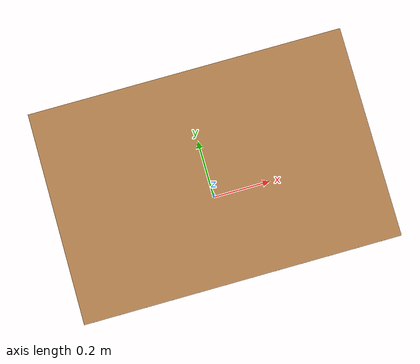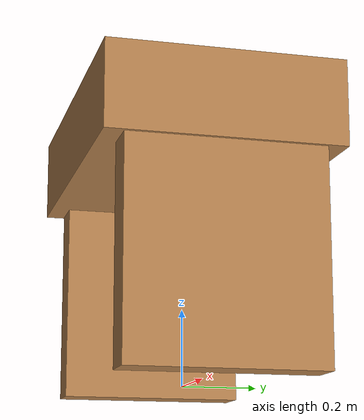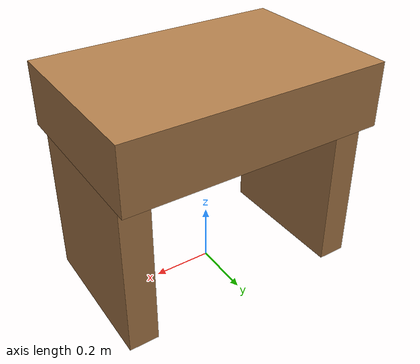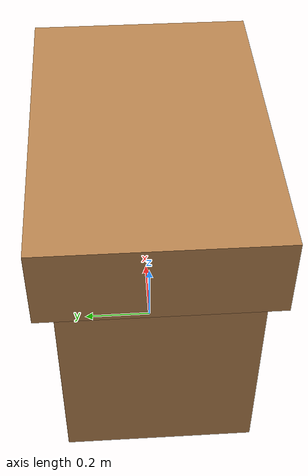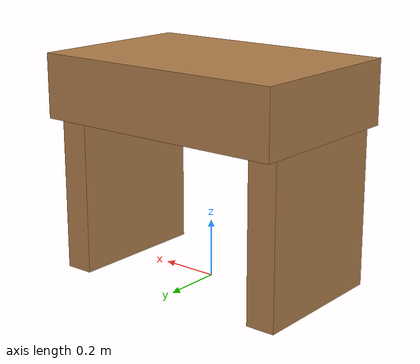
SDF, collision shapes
<?xml version="1.0" ?>
<sdf version="1.5">
    <model name='table_a'>
      <static>1</static>
      <link name='link'>
        <!-- table top at: 0.76 -->
        <visual name='surface'>
          <pose frame=''>0 0 0.65 0 0 0</pose>
          <geometry>
            <box>
              <size>0.9 0.6 0.22</size>
            </box>
          </geometry>
          <material>
            <script>
              <uri>file://media/materials/scripts/gazebo.material</uri>
              <name>Gazebo/Wood</name>
            </script>
          </material>
        </visual>
        <visual name='leg_left'>
          <pose frame=''>0.39 0 0.355 0 0 0</pose>
          <geometry>
            <box>
              <size>0.1 0.5 0.71</size>
            </box>
          </geometry>
          <material>
            <script>
              <uri>file://media/materials/scripts/gazebo.material</uri>
              <name>Gazebo/Wood</name>
            </script>
          </material>
        </visual>
        <visual name='leg_right'>
          <pose frame=''>-0.39 0 0.355 0 0 0</pose>
          <geometry>
            <box>
              <size>0.1 0.5 0.71</size>
            </box>
          </geometry>
          <material>
            <script>
              <uri>file://media/materials/scripts/gazebo.material</uri>
              <name>Gazebo/Wood</name>
            </script>
          </material>
        </visual>

        <collision name='surface'>
          <pose frame=''>0 0 0.65 0 0 0</pose>
          <geometry>
            <box>
              <size>0.9 0.6 0.22</size>
            </box>
          </geometry>
          <max_contacts>10</max_contacts>
          <surface>
            <contact/>
            <friction>
              <ode/>
            </friction>
          </surface>
        </collision>
        <collision name='leg_left'>
          <pose frame=''>0.39 0 0.355 0 0 0</pose>
          <geometry>
            <box>
              <size>0.1 0.5 0.71</size>
            </box>
          </geometry>
          <max_contacts>10</max_contacts>
          <surface>
            <contact/>
            <friction>
              <ode/>
            </friction>
          </surface>
        </collision>
        <collision name='leg_right'>
          <pose frame=''>-0.39 0 0.355 0 0 0</pose>
          <geometry>
            <box>
              <size>0.1 0.5 0.71</size>
            </box>
          </geometry>
          <max_contacts>10</max_contacts>
          <surface>
            <contact/>
            <friction>
              <ode/>
            </friction>
          </surface>
        </collision>

        <visual name='marker_6'>
          <pose frame=''>0.39 0.24 0.765 0 0 0</pose>
          <geometry>
            <mesh>
              <uri>model://ar_marker_8cm_6/meshes/ar_marker_8cm.dae</uri>
            </mesh>
          </geometry>
        </visual>
        <visual name='marker_7'>
          <pose frame=''>-0.39 0.24 0.765 0 0 0</pose>
          <geometry>
            <mesh>
              <uri>model://ar_marker_8cm_7/meshes/ar_marker_8cm.dae</uri>
            </mesh>
          </geometry>
        </visual>
        <self_collide>0</self_collide>
        <enable_wind>0</enable_wind>
        <gravity>1</gravity>
      </link>
    </model>
</sdf>
